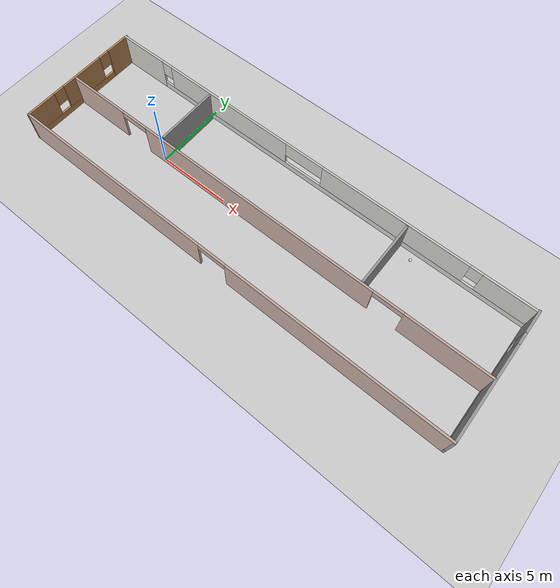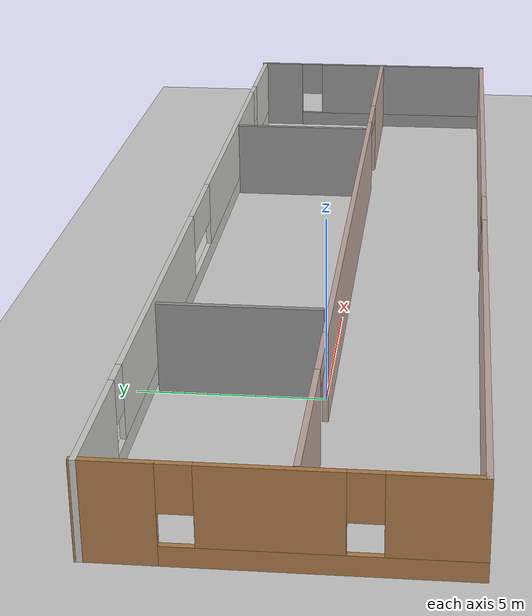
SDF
<sdf version="1.6">
 <world name="default">
  <model name="ground_plane">
   <static>1</static>
   <link name="link">
    <collision name="collision">
     <geometry><plane><normal>0 0 1</normal><size>100 100</size></plane></geometry>
     <surface><friction><ode><mu>100</mu><mu2>50</mu2></ode></friction></surface>
    </collision>
    <visual name="visual">
     <cast_shadows>0</cast_shadows>
     <geometry><plane><normal>0 0 1</normal><size>100 100</size></plane></geometry>
     <material>
      <script><uri>file://media/materials/scripts/gazebo.material</uri><name>Gazebo/Grey</name></script>
     </material>
    </visual>
   </link>
  </model>
  <model name="Building">
   <pose>7.965 0.298834 0 0 -0 0</pose>
   <link name="Wall_15">
    <pose>-15.675 0 0 0 0 -1.5708</pose>
    <visual name="Wall_15_Visual_0">
     <pose>-3.49602 0 1.25 0 -0 0</pose>
     <geometry><box><size>1.83376 0.15 2.5</size></box></geometry>
     <material>
      <script><uri>file://media/materials/scripts/gazebo.material</uri><name>Gazebo/Wood</name></script>
      <ambient>0.435294 0.796078 0.67451 1</ambient>
     </material>
     <meta><layer>0</layer></meta>
    </visual>
    <collision name="Wall_15_Collision_0">
     <geometry><box><size>1.83376 0.15 2.5</size></box></geometry>
     <pose>-3.49602 0 1.25 0 -0 0</pose>
    </collision>
    <visual name="Wall_15_Visual_1">
     <pose>0.916879 0 0.25 0 -0 0</pose>
     <geometry><box><size>6.99203 0.15 0.5</size></box></geometry>
     <material>
      <script><uri>file://media/materials/scripts/gazebo.material</uri><name>Gazebo/Wood</name></script>
      <ambient>0.435294 0.796078 0.67451 1</ambient>
     </material>
     <meta><layer>0</layer></meta>
    </visual>
    <collision name="Wall_15_Collision_1">
     <geometry><box><size>6.99203 0.15 0.5</size></box></geometry>
     <pose>0.916879 0 0.25 0 -0 0</pose>
    </collision>
    <visual name="Wall_15_Visual_2">
     <pose>-0.178609 0 1.5 0 -0 0</pose>
     <geometry><box><size>3.20106 0.15 2</size></box></geometry>
     <material>
      <script><uri>file://media/materials/scripts/gazebo.material</uri><name>Gazebo/Wood</name></script>
      <ambient>0.435294 0.796078 0.67451 1</ambient>
     </material>
     <meta><layer>0</layer></meta>
    </visual>
    <collision name="Wall_15_Collision_2">
     <geometry><box><size>3.20106 0.15 2</size></box></geometry>
     <pose>-0.178609 0 1.5 0 -0 0</pose>
    </collision>
    <visual name="Wall_15_Visual_3">
     <pose>3.31741 0 1.5 0 -0 0</pose>
     <geometry><box><size>2.19098 0.15 2</size></box></geometry>
     <material>
      <script><uri>file://media/materials/scripts/gazebo.material</uri><name>Gazebo/Wood</name></script>
      <ambient>0.435294 0.796078 0.67451 1</ambient>
     </material>
     <meta><layer>0</layer></meta>
    </visual>
    <collision name="Wall_15_Collision_3">
     <geometry><box><size>2.19098 0.15 2</size></box></geometry>
     <pose>3.31741 0 1.5 0 -0 0</pose>
    </collision>
    <visual name="Wall_15_Visual_4">
     <pose>-2.17914 0 1.9 0 -0 0</pose>
     <geometry><box><size>0.8 0.15 1.2</size></box></geometry>
     <material>
      <script><uri>file://media/materials/scripts/gazebo.material</uri><name>Gazebo/Wood</name></script>
      <ambient>0.435294 0.796078 0.67451 1</ambient>
     </material>
     <meta><layer>0</layer></meta>
    </visual>
    <collision name="Wall_15_Collision_4">
     <geometry><box><size>0.8 0.15 1.2</size></box></geometry>
     <pose>-2.17914 0 1.9 0 -0 0</pose>
    </collision>
    <visual name="Wall_15_Visual_5">
     <pose>1.82192 0 1.9 0 -0 0</pose>
     <geometry><box><size>0.8 0.15 1.2</size></box></geometry>
     <material>
      <script><uri>file://media/materials/scripts/gazebo.material</uri><name>Gazebo/Wood</name></script>
      <ambient>0.435294 0.796078 0.67451 1</ambient>
     </material>
     <meta><layer>0</layer></meta>
    </visual>
    <collision name="Wall_15_Collision_5">
     <geometry><box><size>0.8 0.15 1.2</size></box></geometry>
     <pose>1.82192 0 1.9 0 -0 0</pose>
    </collision>
   </link>
   <link name="Wall_17">
    <pose>0 4.29131 0 0 -0 0</pose>
    <visual name="Wall_17_Visual_0">
     <pose>-13.9417 0 1.25 0 -0 0</pose>
     <geometry><box><size>3.61662 0.15 2.5</size></box></geometry>
     <material>
      <script><uri>file://media/materials/scripts/gazebo.material</uri><name>Gazebo/CeilingTiled</name></script>
      <ambient>0.760784 0.662745 0.627451 1</ambient>
     </material>
     <meta><layer>0</layer></meta>
    </visual>
    <collision name="Wall_17_Collision_0">
     <geometry><box><size>3.61662 0.15 2.5</size></box></geometry>
     <pose>-13.9417 0 1.25 0 -0 0</pose>
    </collision>
    <visual name="Wall_17_Visual_1">
     <pose>1.80831 0 0.25 0 -0 0</pose>
     <geometry><box><size>27.8834 0.15 0.5</size></box></geometry>
     <material>
      <script><uri>file://media/materials/scripts/gazebo.material</uri><name>Gazebo/CeilingTiled</name></script>
      <ambient>0.760784 0.662745 0.627451 1</ambient>
     </material>
     <meta><layer>0</layer></meta>
    </visual>
    <collision name="Wall_17_Collision_1">
     <geometry><box><size>27.8834 0.15 0.5</size></box></geometry>
     <pose>1.80831 0 0.25 0 -0 0</pose>
    </collision>
    <visual name="Wall_17_Visual_2">
     <pose>-6.46442 0 1.5 0 -0 0</pose>
     <geometry><box><size>9.73793 0.15 2</size></box></geometry>
     <material>
      <script><uri>file://media/materials/scripts/gazebo.material</uri><name>Gazebo/CeilingTiled</name></script>
      <ambient>0.760784 0.662745 0.627451 1</ambient>
     </material>
     <meta><layer>0</layer></meta>
    </visual>
    <collision name="Wall_17_Collision_2">
     <geometry><box><size>9.73793 0.15 2</size></box></geometry>
     <pose>-6.46442 0 1.5 0 -0 0</pose>
    </collision>
    <visual name="Wall_17_Visual_3">
     <pose>6.3294 0 1.5 0 -0 0</pose>
     <geometry><box><size>10.2497 0.15 2</size></box></geometry>
     <material>
      <script><uri>file://media/materials/scripts/gazebo.material</uri><name>Gazebo/CeilingTiled</name></script>
      <ambient>0.760784 0.662745 0.627451 1</ambient>
     </material>
     <meta><layer>0</layer></meta>
    </visual>
    <collision name="Wall_17_Collision_3">
     <geometry><box><size>10.2497 0.15 2</size></box></geometry>
     <pose>6.3294 0 1.5 0 -0 0</pose>
    </collision>
    <visual name="Wall_17_Visual_4">
     <pose>14.0021 0 1.5 0 -0 0</pose>
     <geometry><box><size>3.49576 0.15 2</size></box></geometry>
     <material>
      <script><uri>file://media/materials/scripts/gazebo.material</uri><name>Gazebo/CeilingTiled</name></script>
      <ambient>0.760784 0.662745 0.627451 1</ambient>
     </material>
     <meta><layer>0</layer></meta>
    </visual>
    <collision name="Wall_17_Collision_4">
     <geometry><box><size>3.49576 0.15 2</size></box></geometry>
     <pose>14.0021 0 1.5 0 -0 0</pose>
    </collision>
    <visual name="Wall_17_Visual_5">
     <pose>-11.7334 0 1.9 0 -0 0</pose>
     <geometry><box><size>0.8 0.15 1.2</size></box></geometry>
     <material>
      <script><uri>file://media/materials/scripts/gazebo.material</uri><name>Gazebo/CeilingTiled</name></script>
      <ambient>0.760784 0.662745 0.627451 1</ambient>
     </material>
     <meta><layer>0</layer></meta>
    </visual>
    <collision name="Wall_17_Collision_5">
     <geometry><box><size>0.8 0.15 1.2</size></box></geometry>
     <pose>-11.7334 0 1.9 0 -0 0</pose>
    </collision>
    <visual name="Wall_17_Visual_6">
     <pose>-0.19545 0 1.9 0 -0 0</pose>
     <geometry><box><size>2.8 0.15 1.2</size></box></geometry>
     <material>
      <script><uri>file://media/materials/scripts/gazebo.material</uri><name>Gazebo/CeilingTiled</name></script>
      <ambient>0.760784 0.662745 0.627451 1</ambient>
     </material>
     <meta><layer>0</layer></meta>
    </visual>
    <collision name="Wall_17_Collision_6">
     <geometry><box><size>2.8 0.15 1.2</size></box></geometry>
     <pose>-0.19545 0 1.9 0 -0 0</pose>
    </collision>
    <visual name="Wall_17_Visual_7">
     <pose>11.8542 0 1.9 0 -0 0</pose>
     <geometry><box><size>0.8 0.15 1.2</size></box></geometry>
     <material>
      <script><uri>file://media/materials/scripts/gazebo.material</uri><name>Gazebo/CeilingTiled</name></script>
      <ambient>0.760784 0.662745 0.627451 1</ambient>
     </material>
     <meta><layer>0</layer></meta>
    </visual>
    <collision name="Wall_17_Collision_7">
     <geometry><box><size>0.8 0.15 1.2</size></box></geometry>
     <pose>11.8542 0 1.9 0 -0 0</pose>
    </collision>
   </link>
   <link name="Wall_18">
    <pose>15.675 0 0 0 0 -1.5708</pose>
    <visual name="Wall_18_Visual_0">
     <pose>-3.61233 0 1.25 0 -0 0</pose>
     <geometry><box><size>1.60114 0.15 2.5</size></box></geometry>
     <material>
      <script><uri>file://media/materials/scripts/gazebo.material</uri><name>Gazebo/Grey</name></script>
      <ambient>1 1 1 1</ambient>
     </material>
     <meta><layer>0</layer></meta>
    </visual>
    <collision name="Wall_18_Collision_0">
     <geometry><box><size>1.60114 0.15 2.5</size></box></geometry>
     <pose>-3.61233 0 1.25 0 -0 0</pose>
    </collision>
    <visual name="Wall_18_Visual_1">
     <pose>0.80057 0 0.25 0 -0 0</pose>
     <geometry><box><size>7.22465 0.15 0.5</size></box></geometry>
     <material>
      <script><uri>file://media/materials/scripts/gazebo.material</uri><name>Gazebo/Grey</name></script>
      <ambient>1 1 1 1</ambient>
     </material>
     <meta><layer>0</layer></meta>
    </visual>
    <collision name="Wall_18_Collision_1">
     <geometry><box><size>7.22465 0.15 0.5</size></box></geometry>
     <pose>0.80057 0 0.25 0 -0 0</pose>
    </collision>
    <visual name="Wall_18_Visual_2">
     <pose>1.20057 0 1.5 0 -0 0</pose>
     <geometry><box><size>6.42465 0.15 2</size></box></geometry>
     <material>
      <script><uri>file://media/materials/scripts/gazebo.material</uri><name>Gazebo/Grey</name></script>
      <ambient>1 1 1 1</ambient>
     </material>
     <meta><layer>0</layer></meta>
    </visual>
    <collision name="Wall_18_Collision_2">
     <geometry><box><size>6.42465 0.15 2</size></box></geometry>
     <pose>1.20057 0 1.5 0 -0 0</pose>
    </collision>
    <visual name="Wall_18_Visual_3">
     <pose>-2.41176 0 1.9 0 -0 0</pose>
     <geometry><box><size>0.8 0.15 1.2</size></box></geometry>
     <material>
      <script><uri>file://media/materials/scripts/gazebo.material</uri><name>Gazebo/Grey</name></script>
      <ambient>1 1 1 1</ambient>
     </material>
     <meta><layer>0</layer></meta>
    </visual>
    <collision name="Wall_18_Collision_3">
     <geometry><box><size>0.8 0.15 1.2</size></box></geometry>
     <pose>-2.41176 0 1.9 0 -0 0</pose>
    </collision>
   </link>
   <link name="Wall_19">
    <pose>0 -4.33783 0 0 -0 3.14159</pose>
    <visual name="Wall_19_Visual_0">
     <pose>-8.30054 0 1.25 0 -0 0</pose>
     <geometry><box><size>14.8989 0.15 2.5</size></box></geometry>
     <material>
      <script><uri>file://media/materials/scripts/gazebo.material</uri><name>Gazebo/Grey</name></script>
      <ambient>0.760784 0.662745 0.627451 1</ambient>
     </material>
     <meta><layer>0</layer></meta>
    </visual>
    <collision name="Wall_19_Collision_0">
     <geometry><box><size>14.8989 0.15 2.5</size></box></geometry>
     <pose>-8.30054 0 1.25 0 -0 0</pose>
    </collision>
    <visual name="Wall_19_Visual_1">
     <pose>8.44946 0 1.25 0 -0 0</pose>
     <geometry><box><size>14.6011 0.15 2.5</size></box></geometry>
     <material>
      <script><uri>file://media/materials/scripts/gazebo.material</uri><name>Gazebo/Grey</name></script>
      <ambient>0.760784 0.662745 0.627451 1</ambient>
     </material>
     <meta><layer>0</layer></meta>
    </visual>
    <collision name="Wall_19_Collision_1">
     <geometry><box><size>14.6011 0.15 2.5</size></box></geometry>
     <pose>8.44946 0 1.25 0 -0 0</pose>
    </collision>
    <visual name="Wall_19_Visual_2">
     <pose>0.148926 0 2.25 0 -0 0</pose>
     <geometry><box><size>2 0.15 0.5</size></box></geometry>
     <material>
      <script><uri>file://media/materials/scripts/gazebo.material</uri><name>Gazebo/Grey</name></script>
      <ambient>0.760784 0.662745 0.627451 1</ambient>
     </material>
     <meta><layer>0</layer></meta>
    </visual>
    <collision name="Wall_19_Collision_2">
     <geometry><box><size>2 0.15 0.5</size></box></geometry>
     <pose>0.148926 0 2.25 0 -0 0</pose>
    </collision>
   </link>
   <link name="Wall_21">
    <pose>0.048183 -0.379678 0 0 -0 0</pose>
    <visual name="Wall_21_Visual_0">
     <pose>-13.4206 0 1.25 0 -0 0</pose>
     <geometry><box><size>4.40878 0.15 2.5</size></box></geometry>
     <material>
      <script><uri>file://media/materials/scripts/gazebo.material</uri><name>Gazebo/Grey</name></script>
      <ambient>0.760784 0.662745 0.627451 1</ambient>
     </material>
     <meta><layer>0</layer></meta>
    </visual>
    <collision name="Wall_21_Collision_0">
     <geometry><box><size>4.40878 0.15 2.5</size></box></geometry>
     <pose>-13.4206 0 1.25 0 -0 0</pose>
    </collision>
    <visual name="Wall_21_Visual_1">
     <pose>-0.574139 0 1.25 0 -0 0</pose>
     <geometry><box><size>17.2842 0.15 2.5</size></box></geometry>
     <material>
      <script><uri>file://media/materials/scripts/gazebo.material</uri><name>Gazebo/Grey</name></script>
      <ambient>0.760784 0.662745 0.627451 1</ambient>
     </material>
     <meta><layer>0</layer></meta>
    </visual>
    <collision name="Wall_21_Collision_1">
     <geometry><box><size>17.2842 0.15 2.5</size></box></geometry>
     <pose>-0.574139 0 1.25 0 -0 0</pose>
    </collision>
    <visual name="Wall_21_Visual_2">
     <pose>12.8465 0 1.25 0 -0 0</pose>
     <geometry><box><size>5.55706 0.15 2.5</size></box></geometry>
     <material>
      <script><uri>file://media/materials/scripts/gazebo.material</uri><name>Gazebo/Grey</name></script>
      <ambient>0.760784 0.662745 0.627451 1</ambient>
     </material>
     <meta><layer>0</layer></meta>
    </visual>
    <collision name="Wall_21_Collision_2">
     <geometry><box><size>5.55706 0.15 2.5</size></box></geometry>
     <pose>12.8465 0 1.25 0 -0 0</pose>
    </collision>
    <visual name="Wall_21_Visual_3">
     <pose>-10.2162 0 2.25 0 -0 0</pose>
     <geometry><box><size>2 0.15 0.5</size></box></geometry>
     <material>
      <script><uri>file://media/materials/scripts/gazebo.material</uri><name>Gazebo/Grey</name></script>
      <ambient>0.760784 0.662745 0.627451 1</ambient>
     </material>
     <meta><layer>0</layer></meta>
    </visual>
    <collision name="Wall_21_Collision_3">
     <geometry><box><size>2 0.15 0.5</size></box></geometry>
     <pose>-10.2162 0 2.25 0 -0 0</pose>
    </collision>
    <visual name="Wall_21_Visual_4">
     <pose>9.06794 0 2.25 0 -0 0</pose>
     <geometry><box><size>2 0.15 0.5</size></box></geometry>
     <material>
      <script><uri>file://media/materials/scripts/gazebo.material</uri><name>Gazebo/Grey</name></script>
      <ambient>0.760784 0.662745 0.627451 1</ambient>
     </material>
     <meta><layer>0</layer></meta>
    </visual>
    <collision name="Wall_21_Collision_4">
     <geometry><box><size>2 0.15 0.5</size></box></geometry>
     <pose>9.06794 0 2.25 0 -0 0</pose>
    </collision>
   </link>
   <link name="Wall_23">
    <collision name="Wall_23_Collision">
     <geometry><box><size>4.35 0.15 2.5</size></box></geometry>
     <pose>0 0 1.25 0 -0 0</pose>
    </collision>
    <visual name="Wall_23_Visual">
     <pose>0 0 1.25 0 -0 0</pose>
     <geometry><box><size>4.35 0.15 2.5</size></box></geometry>
     <material>
      <script><uri>file://media/materials/scripts/gazebo.material</uri><name>Gazebo/Grey</name></script>
      <ambient>1 1 1 1</ambient>
     </material>
     <meta><layer>0</layer></meta>
    </visual>
    <pose>-7.82537 1.94009 0 0 0 -1.5708</pose>
   </link>
   <link name="Wall_28">
    <collision name="Wall_28_Collision">
     <geometry><box><size>4.5 0.15 2.5</size></box></geometry>
     <pose>0 0 1.25 0 -0 0</pose>
    </collision>
    <visual name="Wall_28_Visual">
     <pose>0 0 1.25 0 -0 0</pose>
     <geometry><box><size>4.5 0.15 2.5</size></box></geometry>
     <material>
      <script><uri>file://media/materials/scripts/gazebo.material</uri><name>Gazebo/Grey</name></script>
      <ambient>1 1 1 1</ambient>
     </material>
     <meta><layer>0</layer></meta>
    </visual>
    <pose>7.34142 1.929 0 0 0 -1.5708</pose>
   </link>
   <static>1</static>
  </model>
  <model name="my_ball">
   <link name="link_1">
    <inertial>
     <mass>1</mass>
     <inertia><ixx>0.1</ixx><ixy>0</ixy><ixz>0</ixz><iyy>0.1</iyy><iyz>0</iyz><izz>0.1</izz></inertia>
    </inertial>
    <visual name="visual">
     <geometry><sphere><radius>0.1</radius></sphere></geometry>
     <material>
      <lighting>1</lighting>
      <script><uri>file://media/materials/scripts/gazebo.material</uri><name>Gazebo/White</name></script>
      <shader type="pixel"><normal_map>__default__</normal_map></shader>
      <ambient>1 1 1 1</ambient>
      <diffuse>1 1 1 1</diffuse>
      <specular>1 1 1 1</specular>
      <emissive>1 1 1 1</emissive>
     </material>
    </visual>
    <collision name="collision">
     <geometry><sphere><radius>0.1</radius></sphere></geometry>
     <surface>
      <friction>
       <ode><mu>1</mu><mu2>1</mu2><fdir1>0 0 0</fdir1><slip1>0</slip1><slip2>0</slip2></ode>
       <torsional>
        <coefficient>1</coefficient>
        <patch_radius>0</patch_radius>
        <surface_radius>0</surface_radius>
        <use_patch_radius>1</use_patch_radius>
        <ode><slip>0</slip></ode>
       </torsional>
      </friction>
      <bounce><restitution_coefficient>0</restitution_coefficient><threshold>1e+06</threshold></bounce>
      <contact>
       <collide_without_contact>0</collide_without_contact>
       <collide_without_contact_bitmask>1</collide_without_contact_bitmask>
       <collide_bitmask>1</collide_bitmask>
       <ode>
        <soft_cfm>0</soft_cfm>
        <soft_erp>0.2</soft_erp>
        <kp>1e+13</kp>
        <kd>1</kd>
        <max_vel>0.01</max_vel>
        <min_depth>0</min_depth>
       </ode>
       <bullet>
        <split_impulse>1</split_impulse>
        <split_impulse_penetration_threshold>-0.01</split_impulse_penetration_threshold>
        <soft_cfm>0</soft_cfm>
        <soft_erp>0.2</soft_erp>
        <kp>1e+13</kp>
        <kd>1</kd>
       </bullet>
      </contact>
     </surface>
    </collision>
   </link>
   <static>0</static>
   <pose>16.3784 3.9908 0.1 0 -0 0</pose>
  </model>
 </world>
</sdf>
